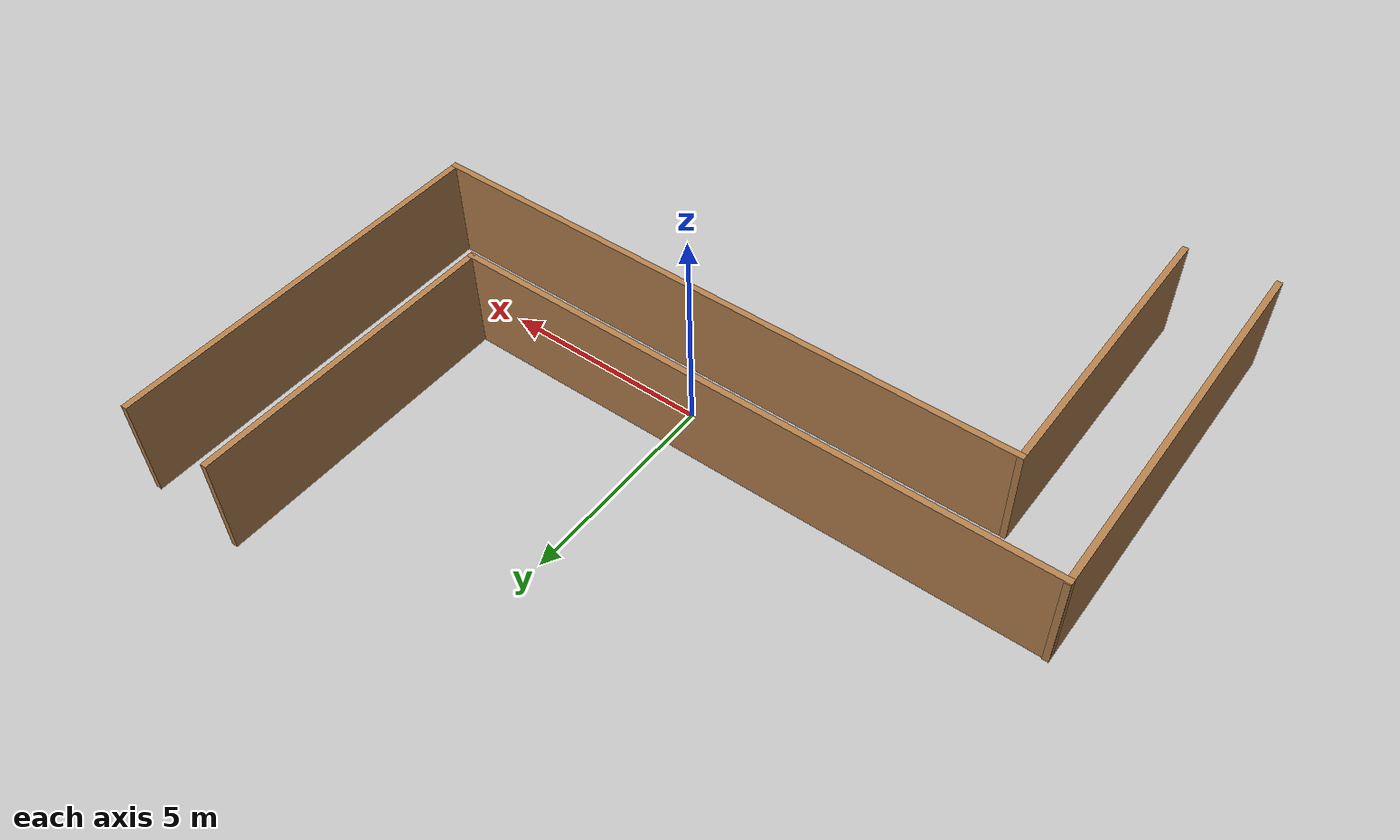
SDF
<?xml version='1.0'?>
<sdf version='1.7'>
  <model name='sensor_test_track'>
    <pose>-0.711904 -0.233513 0 0 -0 0</pose>
    <link name='Wall_10'>
      <collision name='Wall_10_Collision'>
        <geometry>
          <box>
            <size>15 0.15 2.5</size>
          </box>
        </geometry>
        <pose>0 0 1.25 0 -0 0</pose>
      </collision>
      <visual name='Wall_10_Visual'>
        <pose>0 0 1.25 0 -0 0</pose>
        <geometry>
          <box>
            <size>15 0.15 2.5</size>
          </box>
        </geometry>
        <material>
          <script>
            <uri>file://media/materials/scripts/gazebo.material</uri>
            <name>Gazebo/Wood</name>
          </script>
          <ambient>1 1 1 1</ambient>
        </material>
        <meta>
          <layer>0</layer>
        </meta>
      </visual>
      <pose>1.04235 -0.948542 0 0 -0 0</pose>
    </link>
    <link name='Wall_11'>
      <collision name='Wall_11_Collision'>
        <geometry>
          <box>
            <size>9.5 0.15 2.5</size>
          </box>
        </geometry>
        <pose>0 0 1.25 0 -0 0</pose>
      </collision>
      <visual name='Wall_11_Visual'>
        <pose>0 0 1.25 0 -0 0</pose>
        <geometry>
          <box>
            <size>9.5 0.15 2.5</size>
          </box>
        </geometry>
        <material>
          <script>
            <uri>file://media/materials/scripts/gazebo.material</uri>
            <name>Gazebo/Wood</name>
          </script>
          <ambient>1 1 1 1</ambient>
        </material>
        <meta>
          <layer>0</layer>
        </meta>
      </visual>
      <pose>8.46735 3.72646 0 0 -0 1.5708</pose>
    </link>
    <link name='Wall_4'>
      <collision name='Wall_4_Collision'>
        <geometry>
          <box>
            <size>9.75 0.15 2.5</size>
          </box>
        </geometry>
        <pose>0 0 1.25 0 -0 0</pose>
      </collision>
      <visual name='Wall_4_Visual'>
        <pose>0 0 1.25 0 -0 0</pose>
        <geometry>
          <box>
            <size>9.75 0.15 2.5</size>
          </box>
        </geometry>
        <material>
          <script>
            <uri>file://media/materials/scripts/gazebo.material</uri>
            <name>Gazebo/Wood</name>
          </script>
          <ambient>1 1 1 1</ambient>
        </material>
        <meta>
          <layer>0</layer>
        </meta>
      </visual>
      <pose>-8.46692 -3.6617 0 0 -0 1.5708</pose>
    </link>
    <link name='Wall_5'>
      <collision name='Wall_5_Collision'>
        <geometry>
          <box>
            <size>0.15 0.15 2.5</size>
          </box>
        </geometry>
        <pose>0 0 1.25 0 -0 0</pose>
      </collision>
      <visual name='Wall_5_Visual'>
        <pose>0 0 1.25 0 -0 0</pose>
        <geometry>
          <box>
            <size>0.15 0.15 2.5</size>
          </box>
        </geometry>
        <material>
          <script>
            <uri>file://media/materials/scripts/gazebo.material</uri>
            <name>Gazebo/Grey</name>
          </script>
          <ambient>1 1 1 1</ambient>
        </material>
        <meta>
          <layer>0</layer>
        </meta>
      </visual>
      <pose>-8.46692 1.1117 0 0 -0 0</pose>
    </link>
    <link name='Wall_6'>
      <collision name='Wall_6_Collision'>
        <geometry>
          <box>
            <size>14.6445 0.15 2.5</size>
          </box>
        </geometry>
        <pose>0 0 1.25 0 -0 0</pose>
      </collision>
      <visual name='Wall_6_Visual'>
        <pose>0 0 1.25 0 -0 0</pose>
        <geometry>
          <box>
            <size>14.6445 0.15 2.5</size>
          </box>
        </geometry>
        <material>
          <script>
            <uri>file://media/materials/scripts/gazebo.material</uri>
            <name>Gazebo/Wood</name>
          </script>
          <ambient>1 1 1 1</ambient>
        </material>
        <meta>
          <layer>0</layer>
        </meta>
      </visual>
      <pose>-1.22012 1.1117 0 0 -0 0</pose>
    </link>
    <link name='Wall_7'>
      <collision name='Wall_7_Collision'>
        <geometry>
          <box>
            <size>7.5 0.15 2.5</size>
          </box>
        </geometry>
        <pose>0 0 1.25 0 -0 0</pose>
      </collision>
      <visual name='Wall_7_Visual'>
        <pose>0 0 1.25 0 -0 0</pose>
        <geometry>
          <box>
            <size>7.5 0.15 2.5</size>
          </box>
        </geometry>
        <material>
          <script>
            <uri>file://media/materials/scripts/gazebo.material</uri>
            <name>Gazebo/Wood</name>
          </script>
          <ambient>1 1 1 1</ambient>
        </material>
        <meta>
          <layer>0</layer>
        </meta>
      </visual>
      <pose>6.02668 4.7867 0 0 -0 1.5708</pose>
    </link>
    <link name='Wall_9'>
      <collision name='Wall_9_Collision'>
        <geometry>
          <box>
            <size>7.5 0.15 2.5</size>
          </box>
        </geometry>
        <pose>0 0 1.25 0 -0 0</pose>
      </collision>
      <visual name='Wall_9_Visual'>
        <pose>0 0 1.25 0 -0 0</pose>
        <geometry>
          <box>
            <size>7.5 0.15 2.5</size>
          </box>
        </geometry>
        <material>
          <script>
            <uri>file://media/materials/scripts/gazebo.material</uri>
            <name>Gazebo/Wood</name>
          </script>
          <ambient>1 1 1 1</ambient>
        </material>
        <meta>
          <layer>0</layer>
        </meta>
      </visual>
      <pose>-6.38265 -4.62354 0 0 -0 1.5708</pose>
    </link>
    <static>1</static>
  </model>
</sdf>
